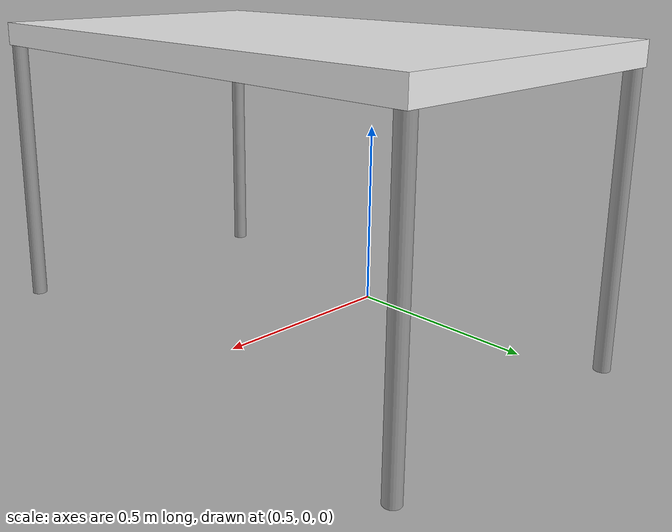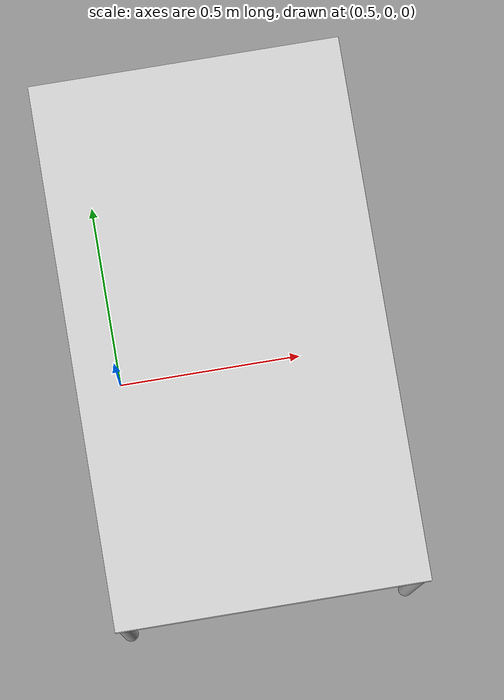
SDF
<sdf version="1.6">
    <model name='table'>
        <static>1</static>
        <allow_auto_disable>true</allow_auto_disable>
        <pose frame=''>0.8 0 0 0 0 -1.5708</pose>
        <link name='link'>
            <collision name='surface'>
                <pose frame=''>0 0 0.75 0 -0 0</pose>
                <geometry>
                    <box>
                        <size>1.5 0.8 0.06</size>
                    </box>
                </geometry>
                <surface>
                    <friction>
                        <ode>
                            <mu>0.6</mu>
                            <mu2>0.6</mu2>
                        </ode>
                    </friction>
                </surface>
            </collision>
            <visual name='visual1'>
                <pose frame=''>0 0 0.75 0 -0 0</pose>
                <geometry>
                    <box>
                        <size>1.4 0.8 0.06</size>
                    </box>
                </geometry>
                <material>
                    <script>
                        <uri>file://media/materials/scripts/gazebo.material</uri>
                        <name>Gazebo/White</name>
                    </script>
                </material>
            </visual>
            <collision name='front_left_leg'>
                <pose frame=''>0.68 0.38 0.375 0 -0 0</pose>
                <geometry>
                    <cylinder>
                        <radius>0.02</radius>
                        <length>0.75</length>
                    </cylinder>
                </geometry>
            </collision>
            <visual name='front_left_leg'>
                <pose frame=''>0.68 0.38 0.375 0 -0 0</pose>
                <geometry>
                    <cylinder>
                        <radius>0.02</radius>
                        <length>0.75</length>
                    </cylinder>
                </geometry>
                <material>
                    <script>
                        <uri>file://media/materials/scripts/gazebo.material</uri>
                        <name>Gazebo/Grey</name>
                    </script>
                </material>
            </visual>
            <collision name='front_right_leg'>
                <pose frame=''>0.68 -0.38 0.375 0 -0 0</pose>
                <geometry>
                    <cylinder>
                        <radius>0.02</radius>
                        <length>0.75</length>
                    </cylinder>
                </geometry>
            </collision>
            <visual name='front_right_leg'>
                <pose frame=''>0.68 -0.38 0.375 0 -0 0</pose>
                <geometry>
                    <cylinder>
                        <radius>0.02</radius>
                        <length>0.75</length>
                    </cylinder>
                </geometry>
                <material>
                    <script>
                        <uri>file://media/materials/scripts/gazebo.material</uri>
                        <name>Gazebo/Grey</name>
                    </script>
                </material>
            </visual>
            <collision name='back_right_leg'>
                <pose frame=''>-0.68 -0.38 0.375 0 -0 0</pose>
                <geometry>
                    <cylinder>
                        <radius>0.02</radius>
                        <length>0.75</length>
                    </cylinder>
                </geometry>
            </collision>
            <visual name='back_right_leg'>
                <pose frame=''>-0.68 -0.38 0.375 0 -0 0</pose>
                <geometry>
                    <cylinder>
                        <radius>0.02</radius>
                        <length>0.75</length>
                    </cylinder>
                </geometry>
                <material>
                    <script>
                        <uri>file://media/materials/scripts/gazebo.material</uri>
                        <name>Gazebo/Grey</name>
                    </script>
                </material>
            </visual>
            <collision name='back_left_leg'>
                <geometry>
                    <cylinder>
                        <radius>0.02</radius>
                        <length>0.75</length>
                    </cylinder>
                </geometry>
            </collision>
            <visual name='back_left_leg'>
                <pose frame=''>-0.68 0.38 0.375 0 -0 0</pose>
                <geometry>
                    <cylinder>
                        <radius>0.02</radius>
                        <length>0.75</length>
                    </cylinder>
                </geometry>
                <material>
                    <script>
                        <uri>file://media/materials/scripts/gazebo.material</uri>
                        <name>Gazebo/Grey</name>
                    </script>
                </material>
            </visual>
            <self_collide>0</self_collide>
            <inertial>
                <inertia>
                    <ixx>1</ixx>
                    <ixy>0</ixy>
                    <ixz>0</ixz>
                    <iyy>1</iyy>
                    <iyz>0</iyz>
                    <izz>1</izz>
                </inertia>
                <mass>1</mass>
            </inertial>
        </link>
    </model>
</sdf>
